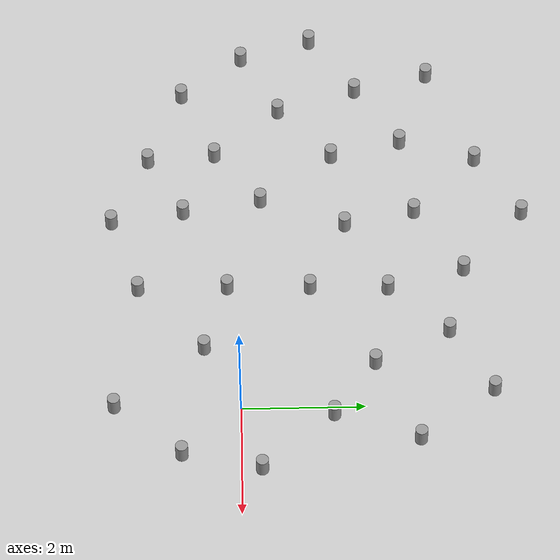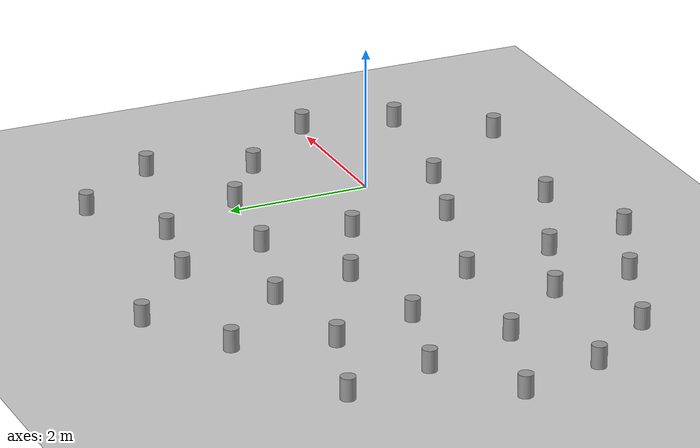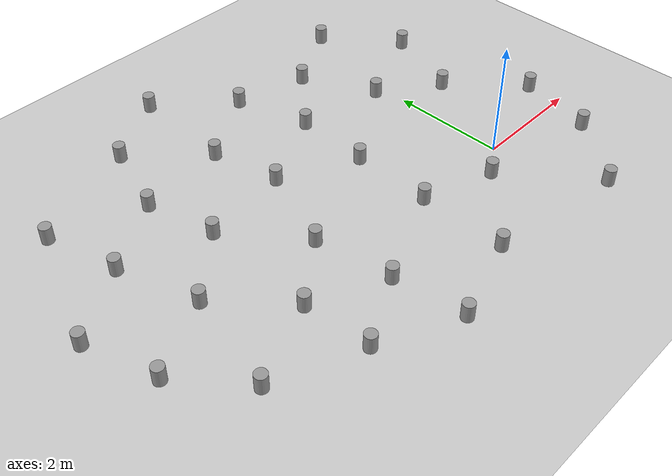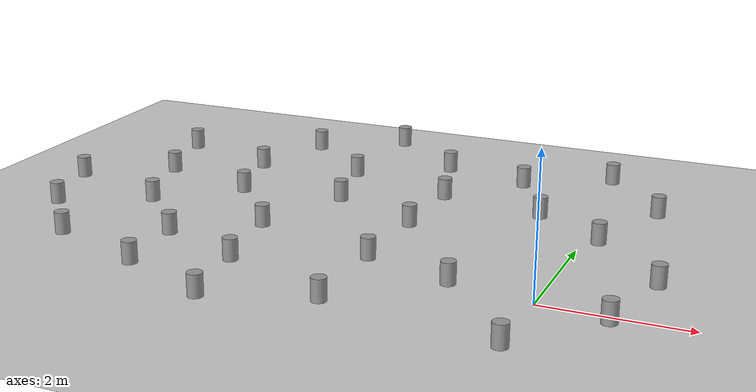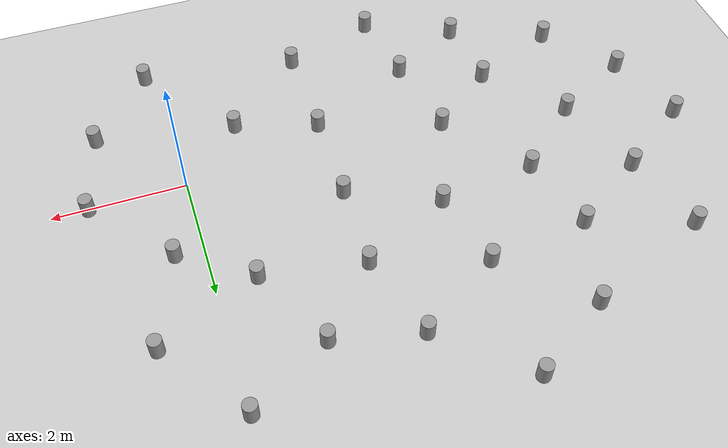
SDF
<sdf version="1.7">
 <world name="default">
  <plugin name="gazebo_ros_init" filename="libgazebo_ros_init.so"/>
  <plugin name="gazebo_ros_factory" filename="libgazebo_ros_factory.so"/>
  <plugin name="gazebo_ros_state" filename="libgazebo_ros_state.so"/>
  <light name="sun" type="directional">
   <pose>0 0 10 0 -0 0</pose>
   <diffuse>0.8 0.8 0.8 1</diffuse>
   <specular>0.2 0.2 0.2 1</specular>
   <attenuation>
    <range>1000</range>
    <constant>0.9</constant>
    <linear>0.01</linear>
    <quadratic>0.001</quadratic>
   </attenuation>
   <direction>-0.5 0.1 -0.9</direction>
   <spot><inner_angle>0</inner_angle><outer_angle>0</outer_angle><falloff>0</falloff></spot>
  </light>
  <model name="ground_plane">
   <static>1</static>
   <link name="link">
    <collision name="collision">
     <geometry><plane><normal>0 0 1</normal><size>100 100</size></plane></geometry>
     <surface><friction><ode><mu>100</mu><mu2>50</mu2></ode></friction></surface>
    </collision>
    <visual name="visual">
     <cast_shadows>0</cast_shadows>
     <geometry><plane><normal>0 0 1</normal><size>100 100</size></plane></geometry>
     <material>
      <script><uri>file://media/materials/scripts/gazebo.material</uri><name>Gazebo/Grey</name></script>
     </material>
    </visual>
   </link>
  </model>
  <gravity>0 0 -9.8</gravity>
  <magnetic_field>6e-06 2.3e-05 -4.2e-05</magnetic_field>
  <atmosphere type="adiabatic"/>
  <physics type="ode">
   <max_step_size>0.001</max_step_size>
   <real_time_factor>1</real_time_factor>
   <real_time_update_rate>1000</real_time_update_rate>
  </physics>
  <scene><ambient>0.4 0.4 0.4 1</ambient><background>0.7 0.7 0.7 1</background><shadows>1</shadows></scene>
  <audio><device>default</device></audio>
  <spherical_coordinates>
   <surface_model>EARTH_WGS84</surface_model>
   <latitude_deg>0</latitude_deg>
   <longitude_deg>0</longitude_deg>
   <elevation>0</elevation>
   <heading_deg>0</heading_deg>
  </spherical_coordinates>
  <model name="unit_cylinder">
   <pose>-2.05658 2.41801 0.499994 -4e-06 -4e-06 -0</pose>
   <link name="link">
    <inertial>
     <mass>1</mass>
     <inertia><ixx>0.145833</ixx><ixy>0</ixy><ixz>0</ixz><iyy>0.145833</iyy><iyz>0</iyz><izz>0.125</izz></inertia>
    </inertial>
    <collision name="collision">
     <geometry><cylinder><radius>0.1</radius><length>0.3</length></cylinder></geometry>
    </collision>
    <visual name="visual">
     <geometry><cylinder><radius>0.1</radius><length>0.3</length></cylinder></geometry>
     <material>
      <script><name>Gazebo/Grey</name><uri>file://media/materials/scripts/gazebo.material</uri></script>
     </material>
    </visual>
   </link>
  </model>
  <model name="unit_cylinder_0">
   <pose>-2.09477 1.14519 0.499992 -3e-06 -4e-06 -0</pose>
   <link name="link">
    <inertial>
     <mass>1</mass>
     <inertia><ixx>0.145833</ixx><ixy>0</ixy><ixz>0</ixz><iyy>0.145833</iyy><iyz>0</iyz><izz>0.125</izz></inertia>
    </inertial>
    <collision name="collision">
     <geometry><cylinder><radius>0.1</radius><length>0.3</length></cylinder></geometry>
    </collision>
    <visual name="visual">
     <geometry><cylinder><radius>0.1</radius><length>0.3</length></cylinder></geometry>
     <material>
      <script><name>Gazebo/Grey</name><uri>file://media/materials/scripts/gazebo.material</uri></script>
     </material>
    </visual>
   </link>
  </model>
  <model name="unit_cylinder_1">
   <pose>-2.11753 -0.209536 0.499998 3e-06 4e-06 -0</pose>
   <link name="link">
    <inertial>
     <mass>1</mass>
     <inertia><ixx>0.145833</ixx><ixy>0</ixy><ixz>0</ixz><iyy>0.145833</iyy><iyz>0</iyz><izz>0.125</izz></inertia>
    </inertial>
    <collision name="collision">
     <geometry><cylinder><radius>0.1</radius><length>0.3</length></cylinder></geometry>
    </collision>
    <visual name="visual">
     <geometry><cylinder><radius>0.1</radius><length>0.3</length></cylinder></geometry>
     <material>
      <script><name>Gazebo/Grey</name><uri>file://media/materials/scripts/gazebo.material</uri></script>
     </material>
    </visual>
   </link>
  </model>
  <model name="unit_cylinder_2">
   <pose>-2.11075 -1.66909 0.499992 -3e-06 -4e-06 -0</pose>
   <link name="link">
    <inertial>
     <mass>1</mass>
     <inertia><ixx>0.145833</ixx><ixy>0</ixy><ixz>0</ixz><iyy>0.145833</iyy><iyz>0</iyz><izz>0.125</izz></inertia>
    </inertial>
    <collision name="collision">
     <geometry><cylinder><radius>0.1</radius><length>0.3</length></cylinder></geometry>
    </collision>
    <visual name="visual">
     <geometry><cylinder><radius>0.1</radius><length>0.3</length></cylinder></geometry>
     <material>
      <script><name>Gazebo/Grey</name><uri>file://media/materials/scripts/gazebo.material</uri></script>
     </material>
    </visual>
   </link>
  </model>
  <model name="unit_cylinder_3">
   <pose>-3.37851 1.74139 0.499994 -4e-06 -3e-06 -0</pose>
   <link name="link">
    <inertial>
     <mass>1</mass>
     <inertia><ixx>0.145833</ixx><ixy>0</ixy><ixz>0</ixz><iyy>0.145833</iyy><iyz>0</iyz><izz>0.125</izz></inertia>
    </inertial>
    <collision name="collision">
     <geometry><cylinder><radius>0.1</radius><length>0.3</length></cylinder></geometry>
    </collision>
    <visual name="visual">
     <geometry><cylinder><radius>0.1</radius><length>0.3</length></cylinder></geometry>
     <material>
      <script><name>Gazebo/Grey</name><uri>file://media/materials/scripts/gazebo.material</uri></script>
     </material>
    </visual>
   </link>
  </model>
  <model name="unit_cylinder_4">
   <pose>-3.90728 0.35029 0.499996 4e-06 3e-06 -0</pose>
   <link name="link">
    <inertial>
     <mass>1</mass>
     <inertia><ixx>0.145833</ixx><ixy>0</ixy><ixz>0</ixz><iyy>0.145833</iyy><iyz>0</iyz><izz>0.125</izz></inertia>
    </inertial>
    <collision name="collision">
     <geometry><cylinder><radius>0.1</radius><length>0.3</length></cylinder></geometry>
    </collision>
    <visual name="visual">
     <geometry><cylinder><radius>0.1</radius><length>0.3</length></cylinder></geometry>
     <material>
      <script><name>Gazebo/Grey</name><uri>file://media/materials/scripts/gazebo.material</uri></script>
     </material>
    </visual>
   </link>
  </model>
  <model name="unit_cylinder_5">
   <pose>-4.83568 1.54669 0.499994 -4e-06 -3e-06 -0</pose>
   <link name="link">
    <inertial>
     <mass>1</mass>
     <inertia><ixx>0.145833</ixx><ixy>0</ixy><ixz>0</ixz><iyy>0.145833</iyy><iyz>0</iyz><izz>0.125</izz></inertia>
    </inertial>
    <collision name="collision">
     <geometry><cylinder><radius>0.1</radius><length>0.3</length></cylinder></geometry>
    </collision>
    <visual name="visual">
     <geometry><cylinder><radius>0.1</radius><length>0.3</length></cylinder></geometry>
     <material>
      <script><name>Gazebo/Grey</name><uri>file://media/materials/scripts/gazebo.material</uri></script>
     </material>
    </visual>
   </link>
  </model>
  <model name="unit_cylinder_6">
   <pose>-3.68619 -0.937942 0.499998 3e-06 -2e-06 0</pose>
   <link name="link">
    <inertial>
     <mass>1</mass>
     <inertia><ixx>0.145833</ixx><ixy>0</ixy><ixz>0</ixz><iyy>0.145833</iyy><iyz>0</iyz><izz>0.125</izz></inertia>
    </inertial>
    <collision name="collision">
     <geometry><cylinder><radius>0.1</radius><length>0.3</length></cylinder></geometry>
    </collision>
    <visual name="visual">
     <geometry><cylinder><radius>0.1</radius><length>0.3</length></cylinder></geometry>
     <material>
      <script><name>Gazebo/Grey</name><uri>file://media/materials/scripts/gazebo.material</uri></script>
     </material>
    </visual>
   </link>
  </model>
  <model name="unit_cylinder_7">
   <pose>-3.63153 2.89856 0.499992 -3e-06 2e-06 0</pose>
   <link name="link">
    <inertial>
     <mass>1</mass>
     <inertia><ixx>0.145833</ixx><ixy>0</ixy><ixz>0</ixz><iyy>0.145833</iyy><iyz>0</iyz><izz>0.125</izz></inertia>
    </inertial>
    <collision name="collision">
     <geometry><cylinder><radius>0.1</radius><length>0.3</length></cylinder></geometry>
    </collision>
    <visual name="visual">
     <geometry><cylinder><radius>0.1</radius><length>0.3</length></cylinder></geometry>
     <material>
      <script><name>Gazebo/Grey</name><uri>file://media/materials/scripts/gazebo.material</uri></script>
     </material>
    </visual>
   </link>
  </model>
  <model name="unit_cylinder_8">
   <pose>-2.41989 3.67125 0.499998 3e-06 -2e-06 0</pose>
   <link name="link">
    <inertial>
     <mass>1</mass>
     <inertia><ixx>0.145833</ixx><ixy>0</ixy><ixz>0</ixz><iyy>0.145833</iyy><iyz>0</iyz><izz>0.125</izz></inertia>
    </inertial>
    <collision name="collision">
     <geometry><cylinder><radius>0.1</radius><length>0.3</length></cylinder></geometry>
    </collision>
    <visual name="visual">
     <geometry><cylinder><radius>0.1</radius><length>0.3</length></cylinder></geometry>
     <material>
      <script><name>Gazebo/Grey</name><uri>file://media/materials/scripts/gazebo.material</uri></script>
     </material>
    </visual>
   </link>
  </model>
  <model name="unit_cylinder_9">
   <pose>-1.17871 3.38771 0.499992 -3e-06 2e-06 0</pose>
   <link name="link">
    <inertial>
     <mass>1</mass>
     <inertia><ixx>0.145833</ixx><ixy>0</ixy><ixz>0</ixz><iyy>0.145833</iyy><iyz>0</iyz><izz>0.125</izz></inertia>
    </inertial>
    <collision name="collision">
     <geometry><cylinder><radius>0.1</radius><length>0.3</length></cylinder></geometry>
    </collision>
    <visual name="visual">
     <geometry><cylinder><radius>0.1</radius><length>0.3</length></cylinder></geometry>
     <material>
      <script><name>Gazebo/Grey</name><uri>file://media/materials/scripts/gazebo.material</uri></script>
     </material>
    </visual>
   </link>
  </model>
  <model name="unit_cylinder_10">
   <pose>-0.575237 2.17015 0.499998 3e-06 -2e-06 0</pose>
   <link name="link">
    <inertial>
     <mass>1</mass>
     <inertia><ixx>0.145833</ixx><ixy>0</ixy><ixz>0</ixz><iyy>0.145833</iyy><iyz>0</iyz><izz>0.125</izz></inertia>
    </inertial>
    <collision name="collision">
     <geometry><cylinder><radius>0.1</radius><length>0.3</length></cylinder></geometry>
    </collision>
    <visual name="visual">
     <geometry><cylinder><radius>0.1</radius><length>0.3</length></cylinder></geometry>
     <material>
      <script><name>Gazebo/Grey</name><uri>file://media/materials/scripts/gazebo.material</uri></script>
     </material>
    </visual>
   </link>
  </model>
  <model name="unit_cylinder_11">
   <pose>-0.912493 -0.584764 0.499993 -3e-06 2e-06 0</pose>
   <link name="link">
    <inertial>
     <mass>1</mass>
     <inertia><ixx>0.145833</ixx><ixy>0</ixy><ixz>0</ixz><iyy>0.145833</iyy><iyz>0</iyz><izz>0.125</izz></inertia>
    </inertial>
    <collision name="collision">
     <geometry><cylinder><radius>0.1</radius><length>0.3</length></cylinder></geometry>
    </collision>
    <visual name="visual">
     <geometry><cylinder><radius>0.1</radius><length>0.3</length></cylinder></geometry>
     <material>
      <script><name>Gazebo/Grey</name><uri>file://media/materials/scripts/gazebo.material</uri></script>
     </material>
    </visual>
   </link>
  </model>
  <model name="unit_cylinder_12">
   <pose>-4.89435 -0.414791 0.499998 3e-06 -2e-06 0</pose>
   <link name="link">
    <inertial>
     <mass>1</mass>
     <inertia><ixx>0.145833</ixx><ixy>0</ixy><ixz>0</ixz><iyy>0.145833</iyy><iyz>0</iyz><izz>0.125</izz></inertia>
    </inertial>
    <collision name="collision">
     <geometry><cylinder><radius>0.1</radius><length>0.3</length></cylinder></geometry>
    </collision>
    <visual name="visual">
     <geometry><cylinder><radius>0.1</radius><length>0.3</length></cylinder></geometry>
     <material>
      <script><name>Gazebo/Grey</name><uri>file://media/materials/scripts/gazebo.material</uri></script>
     </material>
    </visual>
   </link>
  </model>
  <model name="unit_cylinder_13">
   <pose>-5.12299 2.70897 0.499993 -3e-06 2e-06 0</pose>
   <link name="link">
    <inertial>
     <mass>1</mass>
     <inertia><ixx>0.145833</ixx><ixy>0</ixy><ixz>0</ixz><iyy>0.145833</iyy><iyz>0</iyz><izz>0.125</izz></inertia>
    </inertial>
    <collision name="collision">
     <geometry><cylinder><radius>0.1</radius><length>0.3</length></cylinder></geometry>
    </collision>
    <visual name="visual">
     <geometry><cylinder><radius>0.1</radius><length>0.3</length></cylinder></geometry>
     <material>
      <script><name>Gazebo/Grey</name><uri>file://media/materials/scripts/gazebo.material</uri></script>
     </material>
    </visual>
   </link>
  </model>
  <model name="unit_cylinder_14">
   <pose>-5.83244 0.663813 0.499998 3e-06 -2e-06 0</pose>
   <link name="link">
    <inertial>
     <mass>1</mass>
     <inertia><ixx>0.145833</ixx><ixy>0</ixy><ixz>0</ixz><iyy>0.145833</iyy><iyz>0</iyz><izz>0.125</izz></inertia>
    </inertial>
    <collision name="collision">
     <geometry><cylinder><radius>0.1</radius><length>0.3</length></cylinder></geometry>
    </collision>
    <visual name="visual">
     <geometry><cylinder><radius>0.1</radius><length>0.3</length></cylinder></geometry>
     <material>
      <script><name>Gazebo/Grey</name><uri>file://media/materials/scripts/gazebo.material</uri></script>
     </material>
    </visual>
   </link>
  </model>
  <model name="unit_cylinder_15">
   <pose>-6.26301 1.97781 0.499993 -3e-06 3e-06 0</pose>
   <link name="link">
    <inertial>
     <mass>1</mass>
     <inertia><ixx>0.145833</ixx><ixy>0</ixy><ixz>0</ixz><iyy>0.145833</iyy><iyz>0</iyz><izz>0.125</izz></inertia>
    </inertial>
    <collision name="collision">
     <geometry><cylinder><radius>0.1</radius><length>0.3</length></cylinder></geometry>
    </collision>
    <visual name="visual">
     <geometry><cylinder><radius>0.1</radius><length>0.3</length></cylinder></geometry>
     <material>
      <script><name>Gazebo/Grey</name><uri>file://media/materials/scripts/gazebo.material</uri></script>
     </material>
    </visual>
   </link>
  </model>
  <model name="unit_cylinder_16">
   <pose>-6.2027 -0.974642 0.499998 3e-06 -3e-06 0</pose>
   <link name="link">
    <inertial>
     <mass>1</mass>
     <inertia><ixx>0.145833</ixx><ixy>0</ixy><ixz>0</ixz><iyy>0.145833</iyy><iyz>0</iyz><izz>0.125</izz></inertia>
    </inertial>
    <collision name="collision">
     <geometry><cylinder><radius>0.1</radius><length>0.3</length></cylinder></geometry>
    </collision>
    <visual name="visual">
     <geometry><cylinder><radius>0.1</radius><length>0.3</length></cylinder></geometry>
     <material>
      <script><name>Gazebo/Grey</name><uri>file://media/materials/scripts/gazebo.material</uri></script>
     </material>
    </visual>
   </link>
  </model>
  <model name="unit_cylinder_17">
   <pose>-4.78984 -1.53205 0.499992 -3e-06 3e-06 0</pose>
   <link name="link">
    <inertial>
     <mass>1</mass>
     <inertia><ixx>0.145833</ixx><ixy>0</ixy><ixz>0</ixz><iyy>0.145833</iyy><iyz>0</iyz><izz>0.125</izz></inertia>
    </inertial>
    <collision name="collision">
     <geometry><cylinder><radius>0.1</radius><length>0.3</length></cylinder></geometry>
    </collision>
    <visual name="visual">
     <geometry><cylinder><radius>0.1</radius><length>0.3</length></cylinder></geometry>
     <material>
      <script><name>Gazebo/Grey</name><uri>file://media/materials/scripts/gazebo.material</uri></script>
     </material>
    </visual>
   </link>
  </model>
  <model name="unit_cylinder_18">
   <pose>-3.49794 -2.12314 0.499998 3e-06 -3e-06 0</pose>
   <link name="link">
    <inertial>
     <mass>1</mass>
     <inertia><ixx>0.145833</ixx><ixy>0</ixy><ixz>0</ixz><iyy>0.145833</iyy><iyz>0</iyz><izz>0.125</izz></inertia>
    </inertial>
    <collision name="collision">
     <geometry><cylinder><radius>0.1</radius><length>0.3</length></cylinder></geometry>
    </collision>
    <visual name="visual">
     <geometry><cylinder><radius>0.1</radius><length>0.3</length></cylinder></geometry>
     <material>
      <script><name>Gazebo/Grey</name><uri>file://media/materials/scripts/gazebo.material</uri></script>
     </material>
    </visual>
   </link>
  </model>
  <model name="unit_cylinder_19">
   <pose>-4.72419 3.95568 0.499992 -3e-06 3e-06 0</pose>
   <link name="link">
    <inertial>
     <mass>1</mass>
     <inertia><ixx>0.145833</ixx><ixy>0</ixy><ixz>0</ixz><iyy>0.145833</iyy><iyz>0</iyz><izz>0.125</izz></inertia>
    </inertial>
    <collision name="collision">
     <geometry><cylinder><radius>0.1</radius><length>0.3</length></cylinder></geometry>
    </collision>
    <visual name="visual">
     <geometry><cylinder><radius>0.1</radius><length>0.3</length></cylinder></geometry>
     <material>
      <script><name>Gazebo/Grey</name><uri>file://media/materials/scripts/gazebo.material</uri></script>
     </material>
    </visual>
   </link>
  </model>
  <model name="unit_cylinder_20">
   <pose>0.409637 1.48754 0.499998 3e-06 -3e-06 0</pose>
   <link name="link">
    <inertial>
     <mass>1</mass>
     <inertia><ixx>0.145833</ixx><ixy>0</ixy><ixz>0</ixz><iyy>0.145833</iyy><iyz>0</iyz><izz>0.125</izz></inertia>
    </inertial>
    <collision name="collision">
     <geometry><cylinder><radius>0.1</radius><length>0.3</length></cylinder></geometry>
    </collision>
    <visual name="visual">
     <geometry><cylinder><radius>0.1</radius><length>0.3</length></cylinder></geometry>
     <material>
      <script><name>Gazebo/Grey</name><uri>file://media/materials/scripts/gazebo.material</uri></script>
     </material>
    </visual>
   </link>
  </model>
  <model name="unit_cylinder_21">
   <pose>0.900584 2.84749 0.499992 -3e-06 3e-06 0</pose>
   <link name="link">
    <inertial>
     <mass>1</mass>
     <inertia><ixx>0.145833</ixx><ixy>0</ixy><ixz>0</ixz><iyy>0.145833</iyy><iyz>0</iyz><izz>0.125</izz></inertia>
    </inertial>
    <collision name="collision">
     <geometry><cylinder><radius>0.1</radius><length>0.3</length></cylinder></geometry>
    </collision>
    <visual name="visual">
     <geometry><cylinder><radius>0.1</radius><length>0.3</length></cylinder></geometry>
     <material>
      <script><name>Gazebo/Grey</name><uri>file://media/materials/scripts/gazebo.material</uri></script>
     </material>
    </visual>
   </link>
  </model>
  <model name="unit_cylinder_22">
   <pose>1.41683 0.330991 0.499998 3e-06 -4e-06 0</pose>
   <link name="link">
    <inertial>
     <mass>1</mass>
     <inertia><ixx>0.145833</ixx><ixy>0</ixy><ixz>0</ixz><iyy>0.145833</iyy><iyz>0</iyz><izz>0.125</izz></inertia>
    </inertial>
    <collision name="collision">
     <geometry><cylinder><radius>0.1</radius><length>0.3</length></cylinder></geometry>
    </collision>
    <visual name="visual">
     <geometry><cylinder><radius>0.1</radius><length>0.3</length></cylinder></geometry>
     <material>
      <script><name>Gazebo/Grey</name><uri>file://media/materials/scripts/gazebo.material</uri></script>
     </material>
    </visual>
   </link>
  </model>
  <model name="unit_cylinder_23">
   <pose>1.13025 -0.936008 0.499992 -3e-06 4e-06 0</pose>
   <link name="link">
    <inertial>
     <mass>1</mass>
     <inertia><ixx>0.145833</ixx><ixy>0</ixy><ixz>0</ixz><iyy>0.145833</iyy><iyz>0</iyz><izz>0.125</izz></inertia>
    </inertial>
    <collision name="collision">
     <geometry><cylinder><radius>0.1</radius><length>0.3</length></cylinder></geometry>
    </collision>
    <visual name="visual">
     <geometry><cylinder><radius>0.1</radius><length>0.3</length></cylinder></geometry>
     <material>
      <script><name>Gazebo/Grey</name><uri>file://media/materials/scripts/gazebo.material</uri></script>
     </material>
    </visual>
   </link>
  </model>
  <model name="unit_cylinder_24">
   <pose>0.202544 -2.01996 0.499998 3e-06 -4e-06 0</pose>
   <link name="link">
    <inertial>
     <mass>1</mass>
     <inertia><ixx>0.145833</ixx><ixy>0</ixy><ixz>0</ixz><iyy>0.145833</iyy><iyz>0</iyz><izz>0.125</izz></inertia>
    </inertial>
    <collision name="collision">
     <geometry><cylinder><radius>0.1</radius><length>0.3</length></cylinder></geometry>
    </collision>
    <visual name="visual">
     <geometry><cylinder><radius>0.1</radius><length>0.3</length></cylinder></geometry>
     <material>
      <script><name>Gazebo/Grey</name><uri>file://media/materials/scripts/gazebo.material</uri></script>
     </material>
    </visual>
   </link>
  </model>
  <model name="unit_cylinder_25">
   <pose>-0.01507 4.06002 0.499992 -3e-06 -4e-06 -0</pose>
   <link name="link">
    <inertial>
     <mass>1</mass>
     <inertia><ixx>0.145833</ixx><ixy>0</ixy><ixz>0</ixz><iyy>0.145833</iyy><iyz>0</iyz><izz>0.125</izz></inertia>
    </inertial>
    <collision name="collision">
     <geometry><cylinder><radius>0.1</radius><length>0.3</length></cylinder></geometry>
    </collision>
    <visual name="visual">
     <geometry><cylinder><radius>0.1</radius><length>0.3</length></cylinder></geometry>
     <material>
      <script><name>Gazebo/Grey</name><uri>file://media/materials/scripts/gazebo.material</uri></script>
     </material>
    </visual>
   </link>
  </model>
  <model name="unit_cylinder_26">
   <pose>-3.57003 4.68143 0.499993 -3e-06 -3e-06 0</pose>
   <link name="link">
    <inertial>
     <mass>1</mass>
     <inertia><ixx>0.145833</ixx><ixy>0</ixy><ixz>0</ixz><iyy>0.145833</iyy><iyz>0</iyz><izz>0.125</izz></inertia>
    </inertial>
    <collision name="collision">
     <geometry><cylinder><radius>0.1</radius><length>0.3</length></cylinder></geometry>
    </collision>
    <visual name="visual">
     <geometry><cylinder><radius>0.1</radius><length>0.3</length></cylinder></geometry>
     <material>
      <script><name>Gazebo/Grey</name><uri>file://media/materials/scripts/gazebo.material</uri></script>
     </material>
    </visual>
   </link>
  </model>
  <model name="unit_cylinder_27">
   <pose>-7.01343 0.041634 0.499997 3e-06 4e-06 -0</pose>
   <link name="link">
    <inertial>
     <mass>1</mass>
     <inertia><ixx>0.145833</ixx><ixy>0</ixy><ixz>0</ixz><iyy>0.145833</iyy><iyz>0</iyz><izz>0.125</izz></inertia>
    </inertial>
    <collision name="collision">
     <geometry><cylinder><radius>0.1</radius><length>0.3</length></cylinder></geometry>
    </collision>
    <visual name="visual">
     <geometry><cylinder><radius>0.1</radius><length>0.3</length></cylinder></geometry>
     <material>
      <script><name>Gazebo/Grey</name><uri>file://media/materials/scripts/gazebo.material</uri></script>
     </material>
    </visual>
   </link>
  </model>
  <model name="unit_cylinder_28">
   <pose>-7.38484 1.22309 0.499993 -3e-06 -4e-06 -0</pose>
   <link name="link">
    <inertial>
     <mass>1</mass>
     <inertia><ixx>0.145833</ixx><ixy>0</ixy><ixz>0</ixz><iyy>0.145833</iyy><iyz>0</iyz><izz>0.125</izz></inertia>
    </inertial>
    <collision name="collision">
     <geometry><cylinder><radius>0.1</radius><length>0.3</length></cylinder></geometry>
    </collision>
    <visual name="visual">
     <geometry><cylinder><radius>0.1</radius><length>0.3</length></cylinder></geometry>
     <material>
      <script><name>Gazebo/Grey</name><uri>file://media/materials/scripts/gazebo.material</uri></script>
     </material>
    </visual>
   </link>
  </model>
  <model name="unit_cylinder_29">
   <pose>-6.58167 3.20968 0.499997 3e-06 4e-06 -0</pose>
   <link name="link">
    <inertial>
     <mass>1</mass>
     <inertia><ixx>0.145833</ixx><ixy>0</ixy><ixz>0</ixz><iyy>0.145833</iyy><iyz>0</iyz><izz>0.125</izz></inertia>
    </inertial>
    <collision name="collision">
     <geometry><cylinder><radius>0.1</radius><length>0.3</length></cylinder></geometry>
    </collision>
    <visual name="visual">
     <geometry><cylinder><radius>0.1</radius><length>0.3</length></cylinder></geometry>
     <material>
      <script><name>Gazebo/Grey</name><uri>file://media/materials/scripts/gazebo.material</uri></script>
     </material>
    </visual>
   </link>
  </model>
 </world>
</sdf>
